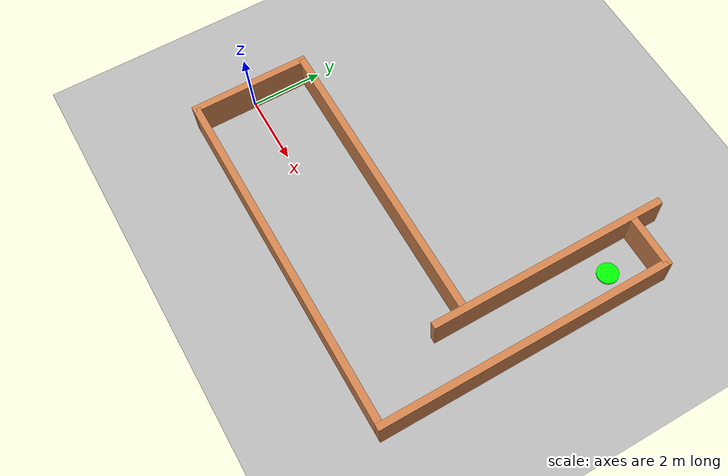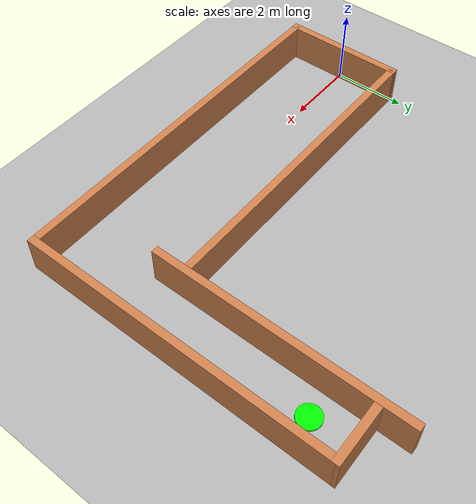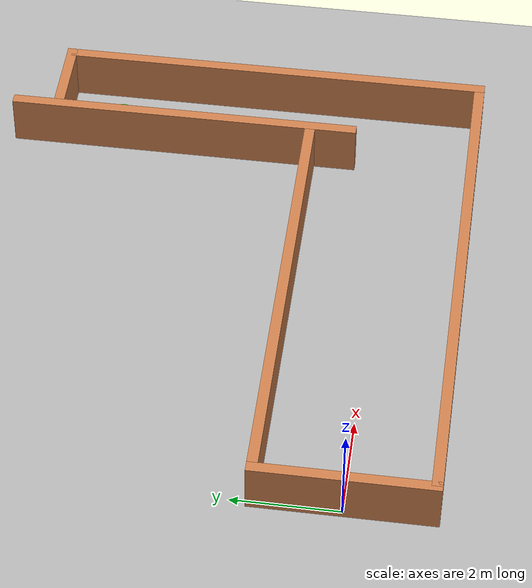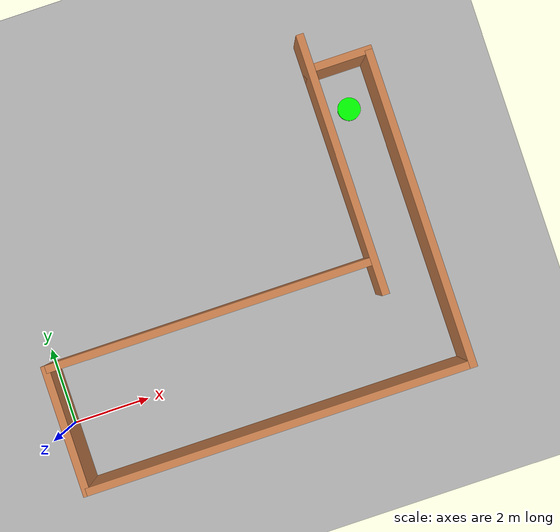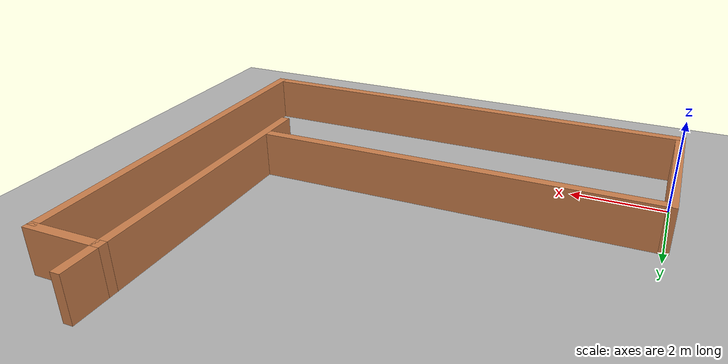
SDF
<?xml version="1.0" ?>
<sdf version="1.6">
  <world name="l_corridor">
    <!-- Physics settings - tuned for legged robot stability -->
    <physics type="ode">
      <max_step_size>0.0005</max_step_size>
      <real_time_factor>1</real_time_factor>
      <real_time_update_rate>2000</real_time_update_rate>
      <ode>
        <solver>
          <type>quick</type>
          <iters>100</iters>
          <sor>1.3</sor>
        </solver>
        <constraints>
          <cfm>1e-5</cfm>
          <erp>0.2</erp>
          <contact_max_correcting_vel>100</contact_max_correcting_vel>
          <contact_surface_layer>0.001</contact_surface_layer>
        </constraints>
      </ode>
    </physics>

    <!-- Lighting - inline definition instead of external model -->
    <light name="sun" type="directional">
      <cast_shadows>true</cast_shadows>
      <pose>0 0 10 0 0 0</pose>
      <diffuse>0.8 0.8 0.8 1</diffuse>
      <specular>0.2 0.2 0.2 1</specular>
      <direction>-0.5 0.1 -0.9</direction>
    </light>

    <!-- Ground plane -->
    <model name="ground_plane">
      <static>true</static>
      <link name="link">
        <collision name="collision">
          <geometry>
            <plane>
              <normal>0 0 1</normal>
              <size>100 100</size>
            </plane>
          </geometry>
          <surface>
            <friction>
              <ode>
                <mu>1.0</mu>
                <mu2>1.0</mu2>
              </ode>
            </friction>
          </surface>
        </collision>
        <visual name="visual">
          <cast_shadows>false</cast_shadows>
          <geometry>
            <plane>
              <normal>0 0 1</normal>
              <size>100 100</size>
            </plane>
          </geometry>
          <material>
            <ambient>0.3 0.3 0.3 1</ambient>
            <diffuse>0.7 0.7 0.7 1</diffuse>
          </material>
        </visual>
      </link>
    </model>

    <!-- L-Shaped Corridor Walls -->
    <!-- Wall thickness: 0.2m, Height: 1.0m, Corridor width: 3.0m -->

    <!-- Outer wall - Long section (goes along positive X) -->
    <model name="outer_wall_long">
      <static>true</static>
      <pose>5 -1.6 0.5 0 0 0</pose>
      <link name="link">
        <collision name="collision">
          <geometry>
            <box><size>10 0.2 1.0</size></box>
          </geometry>
        </collision>
        <visual name="visual">
          <geometry>
            <box><size>10 0.2 1.0</size></box>
          </geometry>
          <material>
            <ambient>0.6 0.4 0.2 1</ambient>
            <diffuse>0.8 0.5 0.3 1</diffuse>
          </material>
        </visual>
      </link>
    </model>

    <!-- Inner wall - Long section (parallel, creating corridor) -->
    <model name="inner_wall_long">
      <static>true</static>
      <pose>4.25 1.6 0.5 0 0 0</pose>
      <link name="link">
        <collision name="collision">
          <geometry>
            <box><size>8.5 0.2 1.0</size></box>
          </geometry>
        </collision>
        <visual name="visual">
          <geometry>
            <box><size>8.5 0.2 1.0</size></box>
          </geometry>
          <material>
            <ambient>0.6 0.4 0.2 1</ambient>
            <diffuse>0.8 0.5 0.3 1</diffuse>
          </material>
        </visual>
      </link>
    </model>

    <!-- Outer wall - Short section (turns at corner, goes along positive Y) -->
    <model name="outer_wall_short">
      <static>true</static>
      <pose>10.1 2.45 0.5 0 0 0</pose>
      <link name="link">
        <collision name="collision">
          <geometry>
            <box><size>0.2 8.3 1.0</size></box>
          </geometry>
        </collision>
        <visual name="visual">
          <geometry>
            <box><size>0.2 8.3 1.0</size></box>
          </geometry>
          <material>
            <ambient>0.6 0.4 0.2 1</ambient>
            <diffuse>0.8 0.5 0.3 1</diffuse>
          </material>
        </visual>
      </link>
    </model>

    <!-- Inner wall - Short section at corner -->
    <model name="inner_wall_corner">
      <static>true</static>
      <pose>8.6 4.1 0.5 0 0 0</pose>
      <link name="link">
        <collision name="collision">
          <geometry>
            <box><size>0.2 6.8 1.0</size></box>
          </geometry>
        </collision>
        <visual name="visual">
          <geometry>
            <box><size>0.2 6.8 1.0</size></box>
          </geometry>
          <material>
            <ambient>0.6 0.4 0.2 1</ambient>
            <diffuse>0.8 0.5 0.3 1</diffuse>
          </material>
        </visual>
      </link>
    </model>

    <!-- End wall to close the corridor at start -->
    <model name="start_wall">
      <static>true</static>
      <pose>0 0 0.5 0 0 0</pose>
      <link name="link">
        <collision name="collision">
          <geometry>
            <box><size>0.2 3.4 1.0</size></box>
          </geometry>
        </collision>
        <visual name="visual">
          <geometry>
            <box><size>0.2 3.4 1.0</size></box>
          </geometry>
          <material>
            <ambient>0.6 0.4 0.2 1</ambient>
            <diffuse>0.8 0.5 0.3 1</diffuse>
          </material>
        </visual>
      </link>
    </model>

    <!-- End wall at the L-turn end -->
    <model name="end_wall">
      <static>true</static>
      <pose>9.35 6.6 0.5 0 0 0</pose>
      <link name="link">
        <collision name="collision">
          <geometry>
            <box><size>1.7 0.2 1.0</size></box>
          </geometry>
        </collision>
        <visual name="visual">
          <geometry>
            <box><size>1.7 0.2 1.0</size></box>
          </geometry>
          <material>
            <ambient>0.6 0.4 0.2 1</ambient>
            <diffuse>0.8 0.5 0.3 1</diffuse>
          </material>
        </visual>
      </link>
    </model>

    <!-- Goal marker at end of L-corridor -->
    <model name="goal_marker">
      <static>true</static>
      <pose>9.35 5.5 0.1 0 0 0</pose>
      <link name="link">
        <visual name="visual">
          <geometry>
            <cylinder>
              <radius>0.3</radius>
              <length>0.05</length>
            </cylinder>
          </geometry>
          <material>
            <ambient>0 1 0 1</ambient>
            <diffuse>0 1 0 1</diffuse>
          </material>
        </visual>
      </link>
    </model>

  </world>
</sdf>
